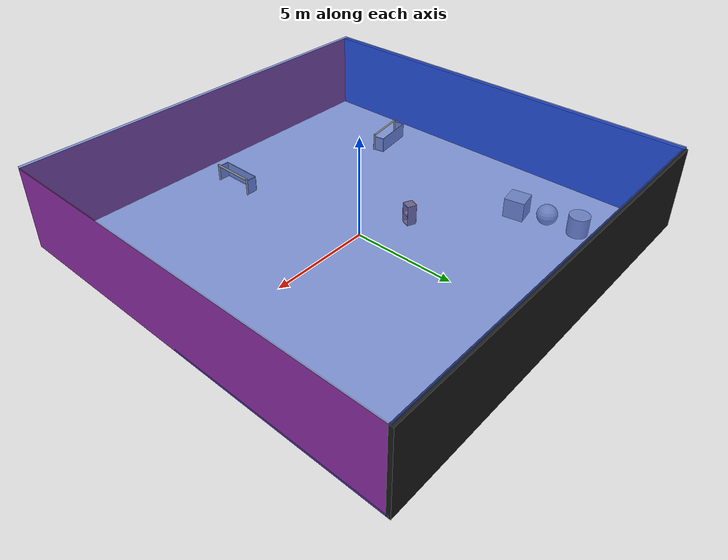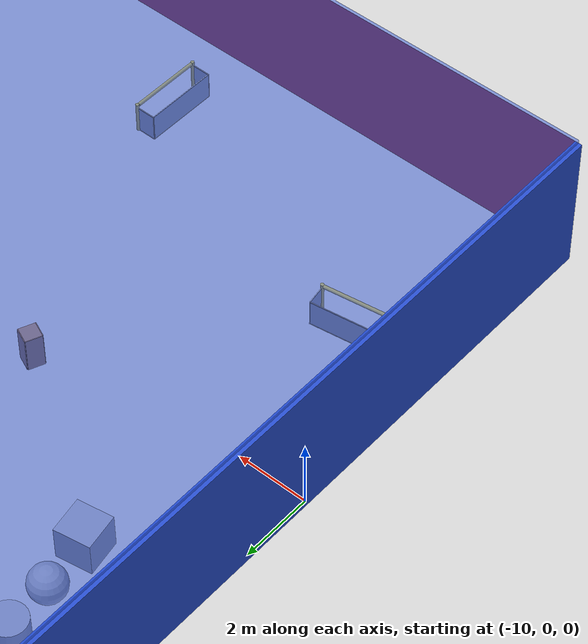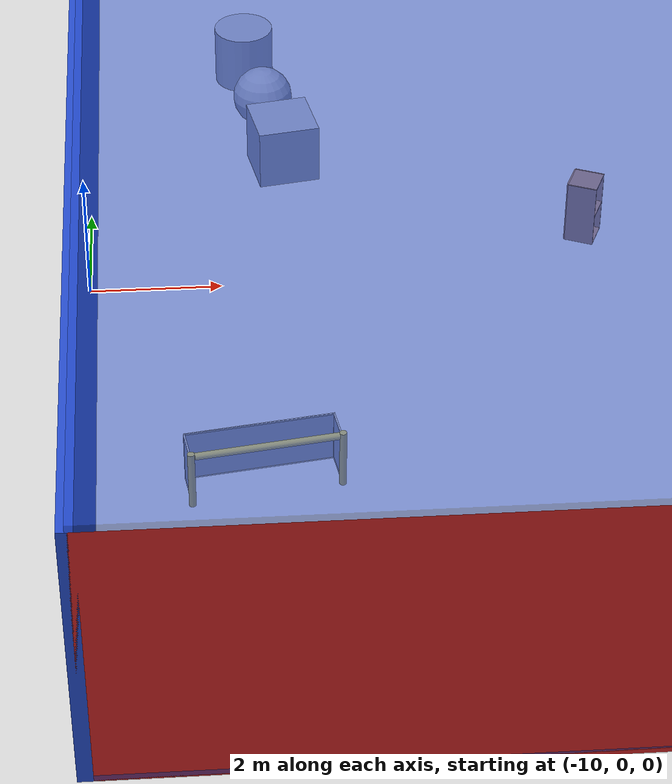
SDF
<sdf version="1.4">
 <world name="default">
  <physics type="ode">
   <max_step_size>0.001</max_step_size>
   <real_time_factor>1</real_time_factor>
   <real_time_update_rate>1000</real_time_update_rate>
   <gravity>0 0 -9.8</gravity>
  </physics>
  <scene><ambient>0.4 0.4 0.4 1</ambient><background>0.7 0.7 0.7 1</background><shadows>1</shadows></scene>
  <model name="Surrounding">
   <static>1</static>
   <link name="Ceiling">
    <collision name="Ceiling_Collision"><geometry><box><size>20 20 0.1</size></box></geometry></collision>
    <visual name="Ceiling_Visual">
     <geometry><box><size>20 20 0.1</size></box></geometry>
     <material>
      <script><uri>file://media/materials/scripts/gazebo.material</uri><name>Gazebo/BlueTransparent</name></script>
     </material>
    </visual>
    <pose>0 0 4.05 0 0 0</pose>
   </link>
   <link name="Wall_South">
    <collision name="Wall_South_Collision">
     <geometry><box><size>20 0 4</size></box></geometry>
     <pose>0 0 2 0 -0 0</pose>
    </collision>
    <visual name="Wall_South_Visual">
     <pose>0 0 2 0 -0 0</pose>
     <geometry><box><size>20 0 4</size></box></geometry>
     <material>
      <script><uri>file://media/materials/scripts/gazebo.material</uri><name>Gazebo/Red</name></script>
     </material>
    </visual>
    <velocity_decay><linear>0</linear><angular>0</angular></velocity_decay>
    <pose>0 -10 0 0 -0 0</pose>
   </link>
   <link name="Wall_East">
    <collision name="Wall_21_Collision">
     <geometry><box><size>20 0 4</size></box></geometry>
     <pose>0 0 2 0 -0 0</pose>
    </collision>
    <visual name="Wall_21_Visual">
     <pose>0 0 2 0 -0 0</pose>
     <geometry><box><size>20 0 4</size></box></geometry>
     <material>
      <script><uri>file://media/materials/scripts/gazebo.material</uri><name>Gazebo/Purple</name></script>
     </material>
    </visual>
    <velocity_decay><linear>0</linear><angular>0</angular></velocity_decay>
    <pose>10 0 0 0 -0 1.5708</pose>
   </link>
   <link name="Wall_North">
    <collision name="Wall_22_Collision">
     <geometry><box><size>20 0.2 4</size></box></geometry>
     <pose>0 0 2 0 -0 0</pose>
    </collision>
    <visual name="Wall_22_Visual">
     <pose>0 0 2 0 -0 0</pose>
     <geometry><box><size>20 0.2 4</size></box></geometry>
     <material>
      <script><uri>file://media/materials/scripts/gazebo.material</uri><name>Gazebo/FlatBlack</name></script>
     </material>
    </visual>
    <velocity_decay><linear>0</linear><angular>0</angular></velocity_decay>
    <pose>0 10 0 0 -0 0</pose>
   </link>
   <link name="Wall_West">
    <collision name="Wall_23_Collision">
     <geometry><box><size>20 0.2 4</size></box></geometry>
     <pose>0 0 2 0 -0 0</pose>
    </collision>
    <visual name="Wall_23_Visual">
     <pose>0 0 2 0 -0 0</pose>
     <geometry><box><size>20 0.2 4</size></box></geometry>
     <material>
      <script><uri>file://media/materials/scripts/gazebo.material</uri><name>Gazebo/BlueLaser</name></script>
     </material>
    </visual>
    <velocity_decay><linear>0</linear><angular>0</angular></velocity_decay>
    <pose>-10 0 0 0 0 -1.5708</pose>
   </link>
   <link name="Ground_link">
    <collision name="collision">
     <pose>0 0 .05 0 -0 0</pose>
     <geometry><box><size>20 20 0.1</size></box></geometry>
    </collision>
    <visual name="visual">
     <pose>0 0 .05 0 -0 0</pose>
     <geometry><box><size>20 20 0.1</size></box></geometry>
     <material>
      <script><uri>file://media/materials/scripts/gazebo.material</uri><name>Gazebo/BlueTransparent</name></script>
     </material>
    </visual>
   </link>
   <static>1</static>
  </model>
  <spherical_coordinates>
   <surface_model>EARTH_WGS84</surface_model>
   <latitude_deg>0</latitude_deg>
   <longitude_deg>0</longitude_deg>
   <elevation>0</elevation>
   <heading_deg>0</heading_deg>
  </spherical_coordinates>
  <light name="lightball_0" type="diffuse">
   <diffuse>0.8 0.8 0.8 1</diffuse>
   <specular>0.2 0.2 0.2 1</specular>
   <attenuation>
    <range>100</range>
    <constant>0.7</constant>
    <linear>0.01</linear>
    <quadratic>0.001</quadratic>
   </attenuation>
   <direction>-0.5 0.1 -0.9</direction>
   <pose>-5.52826910802 -0.47465591935 0.723181145487 0 0 0</pose>
  </light>
  <light name="lightball_1" type="diffuse">
   <diffuse>0.8 0.8 0.8 1</diffuse>
   <specular>0.2 0.2 0.2 1</specular>
   <attenuation>
    <range>100</range>
    <constant>0.7</constant>
    <linear>0.01</linear>
    <quadratic>0.001</quadratic>
   </attenuation>
   <direction>-0.5 0.1 -0.9</direction>
   <pose>8.61362883791 -4.09921587371 2.64345343876 0 0 0</pose>
  </light>
  <light name="lightball_2" type="diffuse">
   <diffuse>0.8 0.8 0.8 1</diffuse>
   <specular>0.2 0.2 0.2 1</specular>
   <attenuation>
    <range>100</range>
    <constant>0.7</constant>
    <linear>0.01</linear>
    <quadratic>0.001</quadratic>
   </attenuation>
   <direction>-0.5 0.1 -0.9</direction>
   <pose>3.4001439023 0.483754966229 3.05654170648 0 0 0</pose>
  </light>
  <light name="lightball_3" type="diffuse">
   <diffuse>0.8 0.8 0.8 1</diffuse>
   <specular>0.2 0.2 0.2 1</specular>
   <attenuation>
    <range>100</range>
    <constant>0.7</constant>
    <linear>0.01</linear>
    <quadratic>0.001</quadratic>
   </attenuation>
   <direction>-0.5 0.1 -0.9</direction>
   <pose>-4.64242890602 -0.69341699226 2.1479481991 0 0 0</pose>
  </light>
  <light name="lightball_4" type="diffuse">
   <diffuse>0.8 0.8 0.8 1</diffuse>
   <specular>0.2 0.2 0.2 1</specular>
   <attenuation>
    <range>100</range>
    <constant>0.7</constant>
    <linear>0.01</linear>
    <quadratic>0.001</quadratic>
   </attenuation>
   <direction>-0.5 0.1 -0.9</direction>
   <pose>-9.40242016014 2.58971518567 1.22608598607 0 0 0</pose>
  </light>
  <light name="lightball_5" type="diffuse">
   <diffuse>0.8 0.8 0.8 1</diffuse>
   <specular>0.2 0.2 0.2 1</specular>
   <attenuation>
    <range>100</range>
    <constant>0.7</constant>
    <linear>0.01</linear>
    <quadratic>0.001</quadratic>
   </attenuation>
   <direction>-0.5 0.1 -0.9</direction>
   <pose>6.98401064261 6.4917893523 2.41060353859 0 0 0</pose>
  </light>
  <light name="lightball_6" type="diffuse">
   <diffuse>0.8 0.8 0.8 1</diffuse>
   <specular>0.2 0.2 0.2 1</specular>
   <attenuation>
    <range>100</range>
    <constant>0.7</constant>
    <linear>0.01</linear>
    <quadratic>0.001</quadratic>
   </attenuation>
   <direction>-0.5 0.1 -0.9</direction>
   <pose>-9.44359699556 -9.06718841269 3.04191197175 0 0 0</pose>
  </light>
  <light name="lightball_7" type="diffuse">
   <diffuse>0.8 0.8 0.8 1</diffuse>
   <specular>0.2 0.2 0.2 1</specular>
   <attenuation>
    <range>100</range>
    <constant>0.7</constant>
    <linear>0.01</linear>
    <quadratic>0.001</quadratic>
   </attenuation>
   <direction>-0.5 0.1 -0.9</direction>
   <pose>2.86977787294 3.80763238319 1.43471255109 0 0 0</pose>
  </light>
  <light name="lightball_8" type="diffuse">
   <diffuse>0.8 0.8 0.8 1</diffuse>
   <specular>0.2 0.2 0.2 1</specular>
   <attenuation>
    <range>100</range>
    <constant>0.7</constant>
    <linear>0.01</linear>
    <quadratic>0.001</quadratic>
   </attenuation>
   <direction>-0.5 0.1 -0.9</direction>
   <pose>0.605477906628 3.77179059656 3.2380601723 0 0 0</pose>
  </light>
  <light name="lightball_9" type="diffuse">
   <diffuse>0.8 0.8 0.8 1</diffuse>
   <specular>0.2 0.2 0.2 1</specular>
   <attenuation>
    <range>100</range>
    <constant>0.7</constant>
    <linear>0.01</linear>
    <quadratic>0.001</quadratic>
   </attenuation>
   <direction>-0.5 0.1 -0.9</direction>
   <pose>-6.62671957478 -6.12736259512 1.30751892784 0 0 0</pose>
  </light>
  <light name="lightball_10" type="diffuse">
   <diffuse>0.8 0.8 0.8 1</diffuse>
   <specular>0.2 0.2 0.2 1</specular>
   <attenuation>
    <range>100</range>
    <constant>0.7</constant>
    <linear>0.01</linear>
    <quadratic>0.001</quadratic>
   </attenuation>
   <direction>-0.5 0.1 -0.9</direction>
   <pose>-1.78913259271 -3.22304668549 0.582379948126 0 0 0</pose>
  </light>
  <light name="lightball_11" type="diffuse">
   <diffuse>0.8 0.8 0.8 1</diffuse>
   <specular>0.2 0.2 0.2 1</specular>
   <attenuation>
    <range>100</range>
    <constant>0.7</constant>
    <linear>0.01</linear>
    <quadratic>0.001</quadratic>
   </attenuation>
   <direction>-0.5 0.1 -0.9</direction>
   <pose>5.72031092687 -5.88332762394 1.01712599831 0 0 0</pose>
  </light>
  <include>
   <uri>model://robocup_3Dsim_goal</uri>
   <pose>-7.54267279862 -4.89081913087 0 0 0 1.72086470521</pose>
  </include>
  <include>
   <uri>model://textured_shapes</uri>
   <pose>-7.1034643544 5.4956552289 0 0 0 0.173989402578</pose>
  </include>
  <include><uri>model://cabinet</uri><pose>-2.28565735392 1.02106113456 0 0 0 2.73550739144</pose></include>
  <include>
   <uri>model://robocup_3Dsim_goal</uri>
   <pose>1.10124150198 -7.42532909463 0 0 0 3.13409170477</pose>
  </include>
 </world>
</sdf>

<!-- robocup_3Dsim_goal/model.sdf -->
<sdf version="1.5">
  <model name="robocup_3d_goal">
    <static>true</static>
    <link name="left_post">
      <pose>0 1.05 0.45 0 0 0</pose>
      <collision name="collision">
        <geometry>
          <cylinder>
            <radius>0.05</radius>
            <length>0.9</length>
          </cylinder>
        </geometry>
      </collision>
      <visual name="visual">
        <geometry>
          <cylinder>
            <radius>0.05</radius>
            <length>0.9</length>
          </cylinder>
        </geometry>
        <material>
          <script>
            <uri>file://media/materials/scripts/gazebo.material</uri>
            <name>Gazebo/ZincYellow</name>
          </script>
        </material>
      </visual>
    </link>
    <link name="left_support_horiz_lower">
      <pose>0.30 1.05 0.01 0 0 0</pose>
      <collision name="collision">
        <geometry>
          <box>
            <size>0.50 0.02 0.02</size>
          </box>
        </geometry>
      </collision>
      <visual name="visual">
        <geometry>
          <box>
            <size>0.50 0.02 0.02</size>
          </box>
        </geometry>
        <material>
          <script>
            <uri>file://media/materials/scripts/gazebo.material</uri>
            <name>Gazebo/White</name>
          </script>
        </material>
      </visual>
    </link>
    <link name="left_support_horiz_upper">
      <pose>0.30 1.05 0.79 0 0 0</pose>
      <collision name="collision">
        <geometry>
          <box>
            <size>0.50 0.02 0.02</size>
          </box>
        </geometry>
      </collision>
      <visual name="visual">
        <geometry>
          <box>
            <size>0.50 0.02 0.02</size>
          </box>
        </geometry>
        <material>
          <script>
            <uri>file://media/materials/scripts/gazebo.material</uri>
            <name>Gazebo/White</name>
          </script>
        </material>
      </visual>
    </link>
    <link name="left_support_vertical">
      <pose>0.56 1.05 0.4 0 1.5708 0</pose>
      <collision name="collision">
        <geometry>
          <box>
            <size>0.80 0.02 0.02</size>
          </box>
        </geometry>
      </collision>
      <visual name="visual">
        <geometry>
          <box>
            <size>0.80 0.02 0.02</size>
          </box>
        </geometry>
        <material>
          <script>
            <uri>file://media/materials/scripts/gazebo.material</uri>
            <name>Gazebo/White</name>
          </script>
        </material>
      </visual>
    </link>
    <link name="right_support_horiz_lower">
      <pose>0.30 -1.05 0.01 0 0 0</pose>
      <collision name="collision">
        <geometry>
          <box>
            <size>0.50 0.02 0.02</size>
          </box>
        </geometry>
      </collision>
      <visual name="visual">
        <geometry>
          <box>
            <size>0.50 0.02 0.02</size>
          </box>
        </geometry>
        <material>
          <script>
            <uri>file://media/materials/scripts/gazebo.material</uri>
            <name>Gazebo/White</name>
          </script>
        </material>
      </visual>
    </link>
    <link name="right_support_horiz_upper">
      <pose>0.30 -1.05 0.79 0 0 0</pose>
      <collision name="collision">
        <geometry>
          <box>
            <size>0.50 0.02 0.02</size>
          </box>
        </geometry>
      </collision>
      <visual name="visual">
        <geometry>
          <box>
            <size>0.50 0.02 0.02</size>
          </box>
        </geometry>
        <material>
          <script>
            <uri>file://media/materials/scripts/gazebo.material</uri>
            <name>Gazebo/White</name>
          </script>
        </material>
      </visual>
    </link>
    <link name="right_support_vertical">
      <pose>0.56 -1.05 0.4 0 1.5708 0</pose>
      <collision name="collision">
        <geometry>
          <box>
            <size>0.80 0.02 0.02</size>
          </box>
        </geometry>
      </collision>
      <visual name="visual">
        <geometry>
          <box>
            <size>0.80 0.02 0.02</size>
          </box>
        </geometry>
        <material>
          <script>
            <uri>file://media/materials/scripts/gazebo.material</uri>
            <name>Gazebo/White</name>
          </script>
        </material>
      </visual>
    </link>
    <link name="center_support_horiz_lower">
      <pose>0.56 0 0.01 0 1.5708 0</pose>
      <collision name="collision">
        <geometry>
          <box>
            <size>0.02 2.08 0.02</size>
          </box>
        </geometry>
      </collision>
      <visual name="visual">
        <geometry>
          <box>
            <size>0.02 2.08 0.02</size>
          </box>
        </geometry>
        <material>
          <script>
            <uri>file://media/materials/scripts/gazebo.material</uri>
            <name>Gazebo/White</name>
          </script>
        </material>
      </visual>
    </link>
    <link name="center_support_horiz_upper">
      <pose>0.56 0 0.79 0 1.5708 0</pose>
      <collision name="collision">
        <geometry>
          <box>
            <size>0.02 2.08 0.02</size>
          </box>
        </geometry>
      </collision>
      <visual name="visual">
        <geometry>
          <box>
            <size>0.02 2.08 0.02</size>
          </box>
        </geometry>
        <material>
          <script>
            <uri>file://media/materials/scripts/gazebo.material</uri>
            <name>Gazebo/White</name>
          </script>
        </material>
      </visual>
    </link>
    <link name="right_post">
      <pose>0 -1.05 0.45 0 0 0</pose>
      <collision name="collision">
        <geometry>
          <cylinder>
            <radius>0.05</radius>
            <length>0.9</length>
          </cylinder>
        </geometry>
      </collision>
      <visual name="visual">
        <geometry>
          <cylinder>
            <radius>0.05</radius>
            <length>0.9</length>
          </cylinder>
        </geometry>
        <material>
          <script>
            <uri>file://media/materials/scripts/gazebo.material</uri>
            <name>Gazebo/ZincYellow</name>
          </script>
        </material>
      </visual>
    </link>
    <link name="crossbar">
      <pose>0 0 0.85 1.57 1.57 0</pose>
      <collision name="collision">
        <geometry>
          <cylinder>
            <radius>0.05</radius>
            <length>2.0</length>
          </cylinder>
        </geometry>
      </collision>
      <visual name="visual">
        <geometry>
          <cylinder>
            <radius>0.05</radius>
            <length>2.0</length>
          </cylinder>
        </geometry>
        <material>
          <script>
            <uri>file://media/materials/scripts/gazebo.material</uri>
            <name>Gazebo/ZincYellow</name>
          </script>
        </material>
      </visual>
    </link>
    <link name="center_net">
      <pose>0.56 0 0.40 0 0 0</pose>
      <collision name="collision">
        <geometry>
          <box>
            <size>0.01 2.1 0.80</size>
          </box>
        </geometry>
      </collision>
      <visual name="visual">
        <geometry>
          <box>
            <size>0.01 2.1 0.80</size>
          </box>
        </geometry>
        <material>
          <script>
            <uri>model://../model_source/models/robocup09_spl_field/materials/scripts/</uri>
            <uri>model://../model_source/models/robocup09_spl_field/materials/textures/</uri>
            <name>RoboCup/Net</name>
          </script>
        </material>
      </visual>
    </link>
    <link name="left_net">
      <pose>0.30 1.05 0.40 0 0 0</pose>
      <collision name="collision">
        <geometry>
          <box>
            <size>0.50 0.01 0.76</size>
          </box>
        </geometry>
      </collision>
      <visual name="visual">
        <geometry>
          <box>
            <size>0.50 0.01 0.76</size>
          </box>
        </geometry>
        <material>
          <script>
            <uri>model://../model_source/models/robocup09_spl_field/materials/scripts/</uri>
            <uri>model://../model_source/models/robocup09_spl_field/materials/textures/</uri>
            <name>RoboCup/Net</name>
          </script>
        </material>
      </visual>
    </link>
    <link name="right_net">
      <pose>0.30 -1.05 0.40 0 0 0</pose>
      <collision name="collision">
        <geometry>
          <box>
            <size>0.50 0.01 0.76</size>
          </box>
        </geometry>
      </collision>
      <visual name="visual">
        <geometry>
          <box>
            <size>0.50 0.01 0.76</size>
          </box>
        </geometry>
        <material>
          <script>
            <uri>model://../model_source/models/robocup09_spl_field/materials/scripts/</uri>
            <uri>model://../model_source/models/robocup09_spl_field/materials/textures/</uri>
            <name>RoboCup/Net</name>
          </script>
        </material>
      </visual>
    </link>
  </model>
</sdf>

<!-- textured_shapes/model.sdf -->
<sdf version="1.6">
  <model name="textured_shapes">
    <pose>0 0 0.5 0 0 0</pose>
    <link name="box">
      <pose>0 -1.5 0 0 0 0</pose>
      <collision name="collision">
        <geometry>
          <box>
            <size>1 1 1</size>
          </box>
        </geometry>
      </collision>
      <visual name="visual">
        <geometry>
          <box>
            <size>1 1 1</size>
          </box>
        </geometry>
        <material>
          <script>
            <uri>model://../model_source/models/textured_shapes/materials/scripts</uri>
            <uri>model://../model_source/models/textured_shapes/materials/textures</uri>
            <name>TexturedShape/Squares</name>
          </script>
        </material>
      </visual>
    </link>
    <link name="sphere">
      <collision name="collision">
        <geometry>
          <sphere>
            <radius>0.5</radius>
          </sphere>
        </geometry>
      </collision>
      <visual name="visual">
        <geometry>
          <sphere>
            <radius>0.5</radius>
          </sphere>
        </geometry>
        <material>
          <script>
            <uri>model://../model_source/models/textured_shapes/materials/scripts</uri>
            <uri>model://../model_source/models/textured_shapes/materials/textures</uri>
            <name>TexturedShape/Squares</name>
          </script>
        </material>
      </visual>
    </link>
    <link name="cylinder">
      <pose>0 1.5 0 0 0 0</pose>
      <collision name="collision">
        <geometry>
          <cylinder>
            <radius>0.5</radius>
            <length>1</length>
          </cylinder>
        </geometry>
      </collision>
      <visual name="visual">
        <geometry>
          <cylinder>
            <radius>0.5</radius>
            <length>1</length>
          </cylinder>
        </geometry>
        <material>
          <script>
            <uri>model://../model_source/models/textured_shapes/materials/scripts</uri>
            <uri>model://../model_source/models/textured_shapes/materials/textures</uri>
            <name>TexturedShape/Squares</name>
          </script>
        </material>
      </visual>
    </link>
  </model>
</sdf>

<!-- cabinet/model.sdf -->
<sdf version="1.5">
  <model name="cabinet">
    <static>true</static>
    <link name="cabinet_bottom_plate">
      <inertial>
        <pose>0 0 -1 0 0 0</pose>
        <inertia>
          <ixx>2.050000</ixx>
          <ixy>0</ixy>
          <ixz>0</ixz>
          <iyy>2.050000</iyy>
          <iyz>0</iyz>
          <izz>2.050000</izz>
        </inertia>
        <mass>25.000000</mass>
      </inertial>
      <collision name="cabinet_bottom_plate_geom">
        <pose>0 0 0.010000 0 0 0</pose>
        <geometry>
          <box>
            <size>0.450000 0.450000 0.020000</size>
          </box>
        </geometry>
      </collision>
      <visual name="cabinet_bottom_plate_geom_visual">
        <pose>0 0 0.010000 0 0 0</pose>
        <geometry>
          <box>
            <size>0.450000 0.450000 0.020000</size>
          </box>
        </geometry>
        <material>
          <script>
            <uri>model://media/materials/scripts/gazebo.material</uri>
            <name>Gazebo/Wood</name>
          </script>
        </material>
      </visual>
      <collision name="cabinet_bottom_plate_geom_cabinet_back_plate">
        <pose>0.235000 0 0.510000 0 0 0</pose>
        <geometry>
          <box>
            <size>0.020000 0.450000 1.020000</size>
          </box>
        </geometry>
      </collision>
      <visual name="cabinet_bottom_plate_geom_cabinet_back_plate_visual">
        <pose>0.235000 0 0.510000 0 0 0</pose>
        <geometry>
          <box>
            <size>0.020000 0.450000 1.020000</size>
          </box>
        </geometry>
        <material>
          <script>
            <uri>model://media/materials/scripts/gazebo.material</uri>
            <name>Gazebo/Wood</name>
          </script>
        </material>
      </visual>
      <collision name="cabinet_bottom_plate_geom_cabinet_left_plate">
        <pose>0 0.235000 0.510000 0 0 0</pose>
        <geometry>
          <box>
            <size>0.450000 0.020000 1.020000</size>
          </box>
        </geometry>
      </collision>
      <visual name="cabinet_bottom_plate_geom_cabinet_left_plate_visual">
        <pose>0 0.235000 0.510000 0 0 0</pose>
        <geometry>
          <box>
            <size>0.450000 0.020000 1.020000</size>
          </box>
        </geometry>
        <material>
          <script>
            <uri>model://media/materials/scripts/gazebo.material</uri>
            <name>Gazebo/Wood</name>
          </script>
        </material>
      </visual>
      <collision name="cabinet_bottom_plate_geom_cabinet_middle_plate">
        <pose>0 0 0.510000 0 0 0</pose>
        <geometry>
          <box>
            <size>0.450000 0.450000 0.020000</size>
          </box>
        </geometry>
      </collision>
      <visual name="cabinet_bottom_plate_geom_cabinet_middle_plate_visual">
        <pose>0 0 0.510000 0 0 0</pose>
        <geometry>
          <box>
            <size>0.450000 0.450000 0.020000</size>
          </box>
        </geometry>
        <material>
          <script>
            <uri>model://media/materials/scripts/gazebo.material</uri>
            <name>Gazebo/Wood</name>
          </script>
        </material>
      </visual>
      <collision name="cabinet_bottom_plate_geom_cabinet_right_plate">
        <pose>0 -0.235000 0.510000 0 0 0</pose>
        <geometry>
          <box>
            <size>0.450000 0.020000 1.020000</size>
          </box>
        </geometry>
      </collision>
      <visual name="cabinet_bottom_plate_geom_cabinet_right_plate_visual">
        <pose>0 -0.235000 0.510000 0 0 0</pose>
        <geometry>
          <box>
            <size>0.450000 0.020000 1.020000</size>
          </box>
        </geometry>
        <material>
          <script>
            <uri>model://media/materials/scripts/gazebo.material</uri>
            <name>Gazebo/Wood</name>
          </script>
        </material>
      </visual>
      <collision name="cabinet_bottom_plate_geom_cabinet_top_plate">
        <pose>0 0 1.010000 0 0 0</pose>
        <geometry>
          <box>
            <size>0.450000 0.450000 0.020000</size>
          </box>
        </geometry>
      </collision>
      <visual name="cabinet_bottom_plate_geom_cabinet_top_plate_visual">
        <pose>0 0 1.010000 0 0 0</pose>
        <geometry>
          <box>
            <size>0.450000 0.450000 0.020000</size>
          </box>
        </geometry>
        <material>
          <script>
            <uri>model://media/materials/scripts/gazebo.material</uri>
            <name>Gazebo/Wood</name>
          </script>
        </material>
      </visual>
    </link>
  </model>
</sdf>
